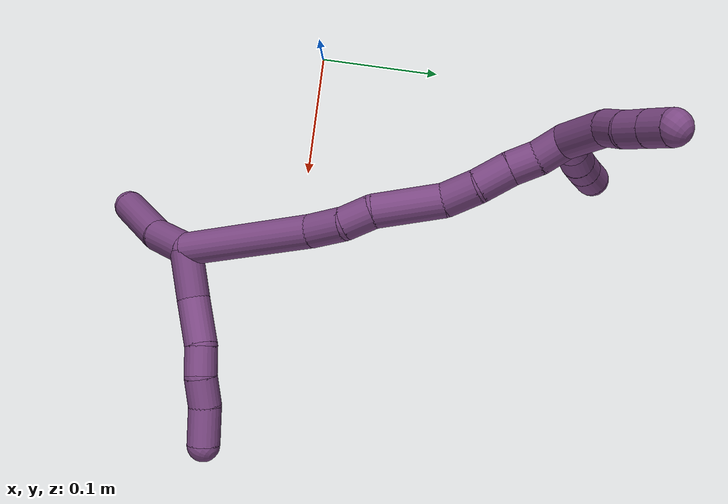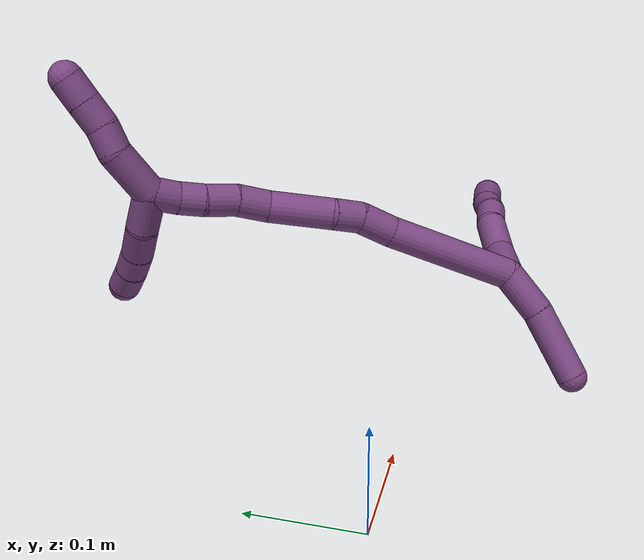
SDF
<sdf version="1.7">
 <world name="default">
  <model name="20">
   <static>0</static>
   <link name="20">
    <collision name="collision-cylinder-e_1_2_8">
     <pose>0.009938 -0.01018 0.012747 0.673901 0.547177 0.195982</pose>
     <geometry><cylinder><radius>0.0125</radius><length>0.038203</length></cylinder></geometry>
     <surface>
      <friction><ode><mu>1.16</mu><mu2>1.16</mu2><slip1>0</slip1><slip2>0</slip2></ode></friction>
      <contact><ode><kp>1e+06</kp><kd>1</kd><max_vel>0</max_vel><min_depth>0.001</min_depth></ode></contact>
     </surface>
    </collision>
    <visual name="visual-cylinder-e_1_2_8">
     <pose>0.009938 -0.01018 0.012747 0.673901 0.547177 0.195982</pose>
     <geometry><cylinder><radius>0.0125</radius><length>0.038203</length></cylinder></geometry>
     <material><ambient>0.478431 0.278431 0.509804 1</ambient></material>
    </visual>
    <collision name="collision-cylinder-e_2_8_9">
     <pose>0.024527 -0.03019 0.040575 0.577651 0.252818 0.075488</pose>
     <geometry><cylinder><radius>0.0125</radius><length>0.037188</length></cylinder></geometry>
     <surface>
      <friction><ode><mu>1.16</mu><mu2>1.16</mu2><slip1>0</slip1><slip2>0</slip2></ode></friction>
      <contact><ode><kp>1e+06</kp><kd>1</kd><max_vel>0</max_vel><min_depth>0.001</min_depth></ode></contact>
     </surface>
    </collision>
    <visual name="visual-cylinder-e_2_8_9">
     <pose>0.024527 -0.03019 0.040575 0.577651 0.252818 0.075488</pose>
     <geometry><cylinder><radius>0.0125</radius><length>0.037188</length></cylinder></geometry>
     <material><ambient>0.478431 0.278431 0.509804 1</ambient></material>
    </visual>
    <collision name="collision-cylinder-e_3_9_10">
     <pose>0.033685 -0.047511 0.062594 0.823672 0.41569 0.183722</pose>
     <geometry><cylinder><radius>0.0125</radius><length>0.02232</length></cylinder></geometry>
     <surface>
      <friction><ode><mu>1.16</mu><mu2>1.16</mu2><slip1>0</slip1><slip2>0</slip2></ode></friction>
      <contact><ode><kp>1e+06</kp><kd>1</kd><max_vel>0</max_vel><min_depth>0.001</min_depth></ode></contact>
     </surface>
    </collision>
    <visual name="visual-cylinder-e_3_9_10">
     <pose>0.033685 -0.047511 0.062594 0.823672 0.41569 0.183722</pose>
     <geometry><cylinder><radius>0.0125</radius><length>0.02232</length></cylinder></geometry>
     <material><ambient>0.478431 0.278431 0.509804 1</ambient></material>
    </visual>
    <collision name="collision-cylinder-e_4_10_11">
     <pose>0.045276 -0.060871 0.076223 0.720129 0.672249 0.261567</pose>
     <geometry><cylinder><radius>0.0125</radius><length>0.022754</length></cylinder></geometry>
     <surface>
      <friction><ode><mu>1.16</mu><mu2>1.16</mu2><slip1>0</slip1><slip2>0</slip2></ode></friction>
      <contact><ode><kp>1e+06</kp><kd>1</kd><max_vel>0</max_vel><min_depth>0.001</min_depth></ode></contact>
     </surface>
    </collision>
    <visual name="visual-cylinder-e_4_10_11">
     <pose>0.045276 -0.060871 0.076223 0.720129 0.672249 0.261567</pose>
     <geometry><cylinder><radius>0.0125</radius><length>0.022754</length></cylinder></geometry>
     <material><ambient>0.478431 0.278431 0.509804 1</ambient></material>
    </visual>
    <collision name="collision-cylinder-e_5_11_6">
     <pose>0.060207 -0.076599 0.090621 0.907284 0.560091 0.278628</pose>
     <geometry><cylinder><radius>0.0125</radius><length>0.029536</length></cylinder></geometry>
     <surface>
      <friction><ode><mu>1.16</mu><mu2>1.16</mu2><slip1>0</slip1><slip2>0</slip2></ode></friction>
      <contact><ode><kp>1e+06</kp><kd>1</kd><max_vel>0</max_vel><min_depth>0.001</min_depth></ode></contact>
     </surface>
    </collision>
    <visual name="visual-cylinder-e_5_11_6">
     <pose>0.060207 -0.076599 0.090621 0.907284 0.560091 0.278628</pose>
     <geometry><cylinder><radius>0.0125</radius><length>0.029536</length></cylinder></geometry>
     <material><ambient>0.478431 0.278431 0.509804 1</ambient></material>
    </visual>
    <collision name="collision-cylinder-e_1_2_12">
     <pose>0.006703 -0.002729 -0.018239 2.99306 0.348597 2.34203</pose>
     <geometry><cylinder><radius>0.0125</radius><length>0.039245</length></cylinder></geometry>
     <surface>
      <friction><ode><mu>1.16</mu><mu2>1.16</mu2><slip1>0</slip1><slip2>0</slip2></ode></friction>
      <contact><ode><kp>1e+06</kp><kd>1</kd><max_vel>0</max_vel><min_depth>0.001</min_depth></ode></contact>
     </surface>
    </collision>
    <visual name="visual-cylinder-e_1_2_12">
     <pose>0.006703 -0.002729 -0.018239 2.99306 0.348597 2.34203</pose>
     <geometry><cylinder><radius>0.0125</radius><length>0.039245</length></cylinder></geometry>
     <material><ambient>0.478431 0.278431 0.509804 1</ambient></material>
    </visual>
    <collision name="collision-cylinder-e_2_12_5">
     <pose>0.024315 -0.003536 -0.064764 -3.07373 0.36735 -2.78015</pose>
     <geometry><cylinder><radius>0.0125</radius><length>0.060755</length></cylinder></geometry>
     <surface>
      <friction><ode><mu>1.16</mu><mu2>1.16</mu2><slip1>0</slip1><slip2>0</slip2></ode></friction>
      <contact><ode><kp>1e+06</kp><kd>1</kd><max_vel>0</max_vel><min_depth>0.001</min_depth></ode></contact>
     </surface>
    </collision>
    <visual name="visual-cylinder-e_2_12_5">
     <pose>0.024315 -0.003536 -0.064764 -3.07373 0.36735 -2.78015</pose>
     <geometry><cylinder><radius>0.0125</radius><length>0.060755</length></cylinder></geometry>
     <material><ambient>0.478431 0.278431 0.509804 1</ambient></material>
    </visual>
    <collision name="collision-cylinder-e_1_2_13">
     <pose>-0.011377 0.034663 0.037596 -0.744839 -0.218921 0.085812</pose>
     <geometry><cylinder><radius>0.0125</radius><length>0.104775</length></cylinder></geometry>
     <surface>
      <friction><ode><mu>1.16</mu><mu2>1.16</mu2><slip1>0</slip1><slip2>0</slip2></ode></friction>
      <contact><ode><kp>1e+06</kp><kd>1</kd><max_vel>0</max_vel><min_depth>0.001</min_depth></ode></contact>
     </surface>
    </collision>
    <visual name="visual-cylinder-e_1_2_13">
     <pose>-0.011377 0.034663 0.037596 -0.744839 -0.218921 0.085812</pose>
     <geometry><cylinder><radius>0.0125</radius><length>0.104775</length></cylinder></geometry>
     <material><ambient>0.478431 0.278431 0.509804 1</ambient></material>
    </visual>
    <collision name="collision-cylinder-e_2_13_14">
     <pose>-0.027531 0.07827 0.084974 -0.740623 -0.345865 0.13542</pose>
     <geometry><cylinder><radius>0.0125</radius><length>0.028177</length></cylinder></geometry>
     <surface>
      <friction><ode><mu>1.16</mu><mu2>1.16</mu2><slip1>0</slip1><slip2>0</slip2></ode></friction>
      <contact><ode><kp>1e+06</kp><kd>1</kd><max_vel>0</max_vel><min_depth>0.001</min_depth></ode></contact>
     </surface>
    </collision>
    <visual name="visual-cylinder-e_2_13_14">
     <pose>-0.027531 0.07827 0.084974 -0.740623 -0.345865 0.13542</pose>
     <geometry><cylinder><radius>0.0125</radius><length>0.028177</length></cylinder></geometry>
     <material><ambient>0.478431 0.278431 0.509804 1</ambient></material>
    </visual>
    <collision name="collision-cylinder-e_3_14_15">
     <pose>-0.035136 0.096792 0.100474 -1.03265 -0.248384 0.141499</pose>
     <geometry><cylinder><radius>0.0125</radius><length>0.023017</length></cylinder></geometry>
     <surface>
      <friction><ode><mu>1.16</mu><mu2>1.16</mu2><slip1>0</slip1><slip2>0</slip2></ode></friction>
      <contact><ode><kp>1e+06</kp><kd>1</kd><max_vel>0</max_vel><min_depth>0.001</min_depth></ode></contact>
     </surface>
    </collision>
    <visual name="visual-cylinder-e_3_14_15">
     <pose>-0.035136 0.096792 0.100474 -1.03265 -0.248384 0.141499</pose>
     <geometry><cylinder><radius>0.0125</radius><length>0.023017</length></cylinder></geometry>
     <material><ambient>0.478431 0.278431 0.509804 1</ambient></material>
    </visual>
    <collision name="collision-cylinder-e_4_15_16">
     <pose>-0.038493 0.126114 0.122386 -0.883821 -0.020647 0.009769</pose>
     <geometry><cylinder><radius>0.0125</radius><length>0.051081</length></cylinder></geometry>
     <surface>
      <friction><ode><mu>1.16</mu><mu2>1.16</mu2><slip1>0</slip1><slip2>0</slip2></ode></friction>
      <contact><ode><kp>1e+06</kp><kd>1</kd><max_vel>0</max_vel><min_depth>0.001</min_depth></ode></contact>
     </surface>
    </collision>
    <visual name="visual-cylinder-e_4_15_16">
     <pose>-0.038493 0.126114 0.122386 -0.883821 -0.020647 0.009769</pose>
     <geometry><cylinder><radius>0.0125</radius><length>0.051081</length></cylinder></geometry>
     <material><ambient>0.478431 0.278431 0.509804 1</ambient></material>
    </visual>
    <collision name="collision-cylinder-e_5_16_17">
     <pose>-0.042904 0.15619 0.145325 -0.992522 -0.304951 0.166027</pose>
     <geometry><cylinder><radius>0.0125</radius><length>0.025875</length></cylinder></geometry>
     <surface>
      <friction><ode><mu>1.16</mu><mu2>1.16</mu2><slip1>0</slip1><slip2>0</slip2></ode></friction>
      <contact><ode><kp>1e+06</kp><kd>1</kd><max_vel>0</max_vel><min_depth>0.001</min_depth></ode></contact>
     </surface>
    </collision>
    <visual name="visual-cylinder-e_5_16_17">
     <pose>-0.042904 0.15619 0.145325 -0.992522 -0.304951 0.166027</pose>
     <geometry><cylinder><radius>0.0125</radius><length>0.025875</length></cylinder></geometry>
     <material><ambient>0.478431 0.278431 0.509804 1</ambient></material>
    </visual>
    <collision name="collision-cylinder-e_6_17_18">
     <pose>-0.049449 0.177898 0.156857 -1.17245 -0.212322 0.1413</pose>
     <geometry><cylinder><radius>0.0125</radius><length>0.025246</length></cylinder></geometry>
     <surface>
      <friction><ode><mu>1.16</mu><mu2>1.16</mu2><slip1>0</slip1><slip2>0</slip2></ode></friction>
      <contact><ode><kp>1e+06</kp><kd>1</kd><max_vel>0</max_vel><min_depth>0.001</min_depth></ode></contact>
     </surface>
    </collision>
    <visual name="visual-cylinder-e_6_17_18">
     <pose>-0.049449 0.177898 0.156857 -1.17245 -0.212322 0.1413</pose>
     <geometry><cylinder><radius>0.0125</radius><length>0.025246</length></cylinder></geometry>
     <material><ambient>0.478431 0.278431 0.509804 1</ambient></material>
    </visual>
    <collision name="collision-cylinder-e_7_18_19">
     <pose>-0.053965 0.197922 0.166746 -1.03789 -0.182745 0.104573</pose>
     <geometry><cylinder><radius>0.0125</radius><length>0.020428</length></cylinder></geometry>
     <surface>
      <friction><ode><mu>1.16</mu><mu2>1.16</mu2><slip1>0</slip1><slip2>0</slip2></ode></friction>
      <contact><ode><kp>1e+06</kp><kd>1</kd><max_vel>0</max_vel><min_depth>0.001</min_depth></ode></contact>
     </surface>
    </collision>
    <visual name="visual-cylinder-e_7_18_19">
     <pose>-0.053965 0.197922 0.166746 -1.03789 -0.182745 0.104573</pose>
     <geometry><cylinder><radius>0.0125</radius><length>0.020428</length></cylinder></geometry>
     <material><ambient>0.478431 0.278431 0.509804 1</ambient></material>
    </visual>
    <collision name="collision-cylinder-e_8_19_1">
     <pose>-0.060204 0.21526 0.176303 -1.09691 -0.422011 0.260258</pose>
     <geometry><cylinder><radius>0.0125</radius><length>0.021401</length></cylinder></geometry>
     <surface>
      <friction><ode><mu>1.16</mu><mu2>1.16</mu2><slip1>0</slip1><slip2>0</slip2></ode></friction>
      <contact><ode><kp>1e+06</kp><kd>1</kd><max_vel>0</max_vel><min_depth>0.001</min_depth></ode></contact>
     </surface>
    </collision>
    <visual name="visual-cylinder-e_8_19_1">
     <pose>-0.060204 0.21526 0.176303 -1.09691 -0.422011 0.260258</pose>
     <geometry><cylinder><radius>0.0125</radius><length>0.021401</length></cylinder></geometry>
     <material><ambient>0.478431 0.278431 0.509804 1</ambient></material>
    </visual>
    <collision name="collision-cylinder-e_1_1_20">
     <pose>-0.050501 0.230121 0.177404 -2.06841 1.10802 -1.61007</pose>
     <geometry><cylinder><radius>0.0125</radius><length>0.031484</length></cylinder></geometry>
     <surface>
      <friction><ode><mu>1.16</mu><mu2>1.16</mu2><slip1>0</slip1><slip2>0</slip2></ode></friction>
      <contact><ode><kp>1e+06</kp><kd>1</kd><max_vel>0</max_vel><min_depth>0.001</min_depth></ode></contact>
     </surface>
    </collision>
    <visual name="visual-cylinder-e_1_1_20">
     <pose>-0.050501 0.230121 0.177404 -2.06841 1.10802 -1.61007</pose>
     <geometry><cylinder><radius>0.0125</radius><length>0.031484</length></cylinder></geometry>
     <material><ambient>0.478431 0.278431 0.509804 1</ambient></material>
    </visual>
    <collision name="collision-cylinder-e_2_20_21">
     <pose>-0.023011 0.239848 0.173048 -1.84556 1.30218 -1.57718</pose>
     <geometry><cylinder><radius>0.0125</radius><length>0.027805</length></cylinder></geometry>
     <surface>
      <friction><ode><mu>1.16</mu><mu2>1.16</mu2><slip1>0</slip1><slip2>0</slip2></ode></friction>
      <contact><ode><kp>1e+06</kp><kd>1</kd><max_vel>0</max_vel><min_depth>0.001</min_depth></ode></contact>
     </surface>
    </collision>
    <visual name="visual-cylinder-e_2_20_21">
     <pose>-0.023011 0.239848 0.173048 -1.84556 1.30218 -1.57718</pose>
     <geometry><cylinder><radius>0.0125</radius><length>0.027805</length></cylinder></geometry>
     <material><ambient>0.478431 0.278431 0.509804 1</ambient></material>
    </visual>
    <collision name="collision-cylinder-e_3_21_22">
     <pose>-0.000112 0.246766 0.171828 -1.63563 1.22937 -1.29113</pose>
     <geometry><cylinder><radius>0.0125</radius><length>0.020152</length></cylinder></geometry>
     <surface>
      <friction><ode><mu>1.16</mu><mu2>1.16</mu2><slip1>0</slip1><slip2>0</slip2></ode></friction>
      <contact><ode><kp>1e+06</kp><kd>1</kd><max_vel>0</max_vel><min_depth>0.001</min_depth></ode></contact>
     </surface>
    </collision>
    <visual name="visual-cylinder-e_3_21_22">
     <pose>-0.000112 0.246766 0.171828 -1.63563 1.22937 -1.29113</pose>
     <geometry><cylinder><radius>0.0125</radius><length>0.020152</length></cylinder></geometry>
     <material><ambient>0.478431 0.278431 0.509804 1</ambient></material>
    </visual>
    <collision name="collision-cylinder-e_4_22_4">
     <pose>0.019017 0.253654 0.172273 -1.38475 1.21471 -1.04574</pose>
     <geometry><cylinder><radius>0.0125</radius><length>0.020559</length></cylinder></geometry>
     <surface>
      <friction><ode><mu>1.16</mu><mu2>1.16</mu2><slip1>0</slip1><slip2>0</slip2></ode></friction>
      <contact><ode><kp>1e+06</kp><kd>1</kd><max_vel>0</max_vel><min_depth>0.001</min_depth></ode></contact>
     </surface>
    </collision>
    <visual name="visual-cylinder-e_4_22_4">
     <pose>0.019017 0.253654 0.172273 -1.38475 1.21471 -1.04574</pose>
     <geometry><cylinder><radius>0.0125</radius><length>0.020559</length></cylinder></geometry>
     <material><ambient>0.478431 0.278431 0.509804 1</ambient></material>
    </visual>
    <collision name="collision-cylinder-e_1_1_23">
     <pose>-0.078091 0.229806 0.193971 -0.417428 -0.751425 0.1667</pose>
     <geometry><cylinder><radius>0.0125</radius><length>0.039561</length></cylinder></geometry>
     <surface>
      <friction><ode><mu>1.16</mu><mu2>1.16</mu2><slip1>0</slip1><slip2>0</slip2></ode></friction>
      <contact><ode><kp>1e+06</kp><kd>1</kd><max_vel>0</max_vel><min_depth>0.001</min_depth></ode></contact>
     </surface>
    </collision>
    <visual name="visual-cylinder-e_1_1_23">
     <pose>-0.078091 0.229806 0.193971 -0.417428 -0.751425 0.1667</pose>
     <geometry><cylinder><radius>0.0125</radius><length>0.039561</length></cylinder></geometry>
     <material><ambient>0.478431 0.278431 0.509804 1</ambient></material>
    </visual>
    <collision name="collision-cylinder-e_2_23_24">
     <pose>-0.097825 0.235547 0.215052 0.015 -0.669727 -0.00522</pose>
     <geometry><cylinder><radius>0.0125</radius><length>0.020073</length></cylinder></geometry>
     <surface>
      <friction><ode><mu>1.16</mu><mu2>1.16</mu2><slip1>0</slip1><slip2>0</slip2></ode></friction>
      <contact><ode><kp>1e+06</kp><kd>1</kd><max_vel>0</max_vel><min_depth>0.001</min_depth></ode></contact>
     </surface>
    </collision>
    <visual name="visual-cylinder-e_2_23_24">
     <pose>-0.097825 0.235547 0.215052 0.015 -0.669727 -0.00522</pose>
     <geometry><cylinder><radius>0.0125</radius><length>0.020073</length></cylinder></geometry>
     <material><ambient>0.478431 0.278431 0.509804 1</ambient></material>
    </visual>
    <collision name="collision-cylinder-e_3_24_25">
     <pose>-0.109946 0.237343 0.230982 -0.232998 -0.617954 0.074676</pose>
     <geometry><cylinder><radius>0.0125</radius><length>0.020332</length></cylinder></geometry>
     <surface>
      <friction><ode><mu>1.16</mu><mu2>1.16</mu2><slip1>0</slip1><slip2>0</slip2></ode></friction>
      <contact><ode><kp>1e+06</kp><kd>1</kd><max_vel>0</max_vel><min_depth>0.001</min_depth></ode></contact>
     </surface>
    </collision>
    <visual name="visual-cylinder-e_3_24_25">
     <pose>-0.109946 0.237343 0.230982 -0.232998 -0.617954 0.074676</pose>
     <geometry><cylinder><radius>0.0125</radius><length>0.020332</length></cylinder></geometry>
     <material><ambient>0.478431 0.278431 0.509804 1</ambient></material>
    </visual>
    <collision name="collision-cylinder-e_4_25_3">
     <pose>-0.12162 0.241012 0.247031 -0.21642 -0.615631 0.069047</pose>
     <geometry><cylinder><radius>0.0125</radius><length>0.020033</length></cylinder></geometry>
     <surface>
      <friction><ode><mu>1.16</mu><mu2>1.16</mu2><slip1>0</slip1><slip2>0</slip2></ode></friction>
      <contact><ode><kp>1e+06</kp><kd>1</kd><max_vel>0</max_vel><min_depth>0.001</min_depth></ode></contact>
     </surface>
    </collision>
    <visual name="visual-cylinder-e_4_25_3">
     <pose>-0.12162 0.241012 0.247031 -0.21642 -0.615631 0.069047</pose>
     <geometry><cylinder><radius>0.0125</radius><length>0.020033</length></cylinder></geometry>
     <material><ambient>0.478431 0.278431 0.509804 1</ambient></material>
    </visual>
    <collision name="collision-sphere-3">
     <pose>-0.127404 0.242768 0.255018 0 -0 0</pose>
     <geometry><sphere><radius>0.0125</radius></sphere></geometry>
     <surface>
      <friction><ode><mu>1.16</mu><mu2>1.16</mu2><slip1>0</slip1><slip2>0</slip2></ode></friction>
      <contact><ode><kp>1e+06</kp><kd>1</kd><max_vel>0</max_vel><min_depth>0.001</min_depth></ode></contact>
     </surface>
    </collision>
    <visual name="visual-sphere-3">
     <pose>-0.127404 0.242768 0.255018 0 -0 0</pose>
     <geometry><sphere><radius>0.0125</radius></sphere></geometry>
     <material><ambient>0.478431 0.278431 0.509804 1</ambient></material>
    </visual>
    <collision name="collision-sphere-25">
     <pose>-0.115836 0.239256 0.239044 0 -0 0</pose>
     <geometry><sphere><radius>0.0125</radius></sphere></geometry>
     <surface>
      <friction><ode><mu>1.16</mu><mu2>1.16</mu2><slip1>0</slip1><slip2>0</slip2></ode></friction>
      <contact><ode><kp>1e+06</kp><kd>1</kd><max_vel>0</max_vel><min_depth>0.001</min_depth></ode></contact>
     </surface>
    </collision>
    <visual name="visual-sphere-25">
     <pose>-0.115836 0.239256 0.239044 0 -0 0</pose>
     <geometry><sphere><radius>0.0125</radius></sphere></geometry>
     <material><ambient>0.478431 0.278431 0.509804 1</ambient></material>
    </visual>
    <collision name="collision-sphere-24">
     <pose>-0.104056 0.235429 0.222919 0 -0 0</pose>
     <geometry><sphere><radius>0.0125</radius></sphere></geometry>
     <surface>
      <friction><ode><mu>1.16</mu><mu2>1.16</mu2><slip1>0</slip1><slip2>0</slip2></ode></friction>
      <contact><ode><kp>1e+06</kp><kd>1</kd><max_vel>0</max_vel><min_depth>0.001</min_depth></ode></contact>
     </surface>
    </collision>
    <visual name="visual-sphere-24">
     <pose>-0.104056 0.235429 0.222919 0 -0 0</pose>
     <geometry><sphere><radius>0.0125</radius></sphere></geometry>
     <material><ambient>0.478431 0.278431 0.509804 1</ambient></material>
    </visual>
    <collision name="collision-sphere-23">
     <pose>-0.091595 0.235666 0.207184 0 -0 0</pose>
     <geometry><sphere><radius>0.0125</radius></sphere></geometry>
     <surface>
      <friction><ode><mu>1.16</mu><mu2>1.16</mu2><slip1>0</slip1><slip2>0</slip2></ode></friction>
      <contact><ode><kp>1e+06</kp><kd>1</kd><max_vel>0</max_vel><min_depth>0.001</min_depth></ode></contact>
     </surface>
    </collision>
    <visual name="visual-sphere-23">
     <pose>-0.091595 0.235666 0.207184 0 -0 0</pose>
     <geometry><sphere><radius>0.0125</radius></sphere></geometry>
     <material><ambient>0.478431 0.278431 0.509804 1</ambient></material>
    </visual>
    <collision name="collision-sphere-4">
     <pose>0.028651 0.257176 0.172935 0 -0 0</pose>
     <geometry><sphere><radius>0.0125</radius></sphere></geometry>
     <surface>
      <friction><ode><mu>1.16</mu><mu2>1.16</mu2><slip1>0</slip1><slip2>0</slip2></ode></friction>
      <contact><ode><kp>1e+06</kp><kd>1</kd><max_vel>0</max_vel><min_depth>0.001</min_depth></ode></contact>
     </surface>
    </collision>
    <visual name="visual-sphere-4">
     <pose>0.028651 0.257176 0.172935 0 -0 0</pose>
     <geometry><sphere><radius>0.0125</radius></sphere></geometry>
     <material><ambient>0.478431 0.278431 0.509804 1</ambient></material>
    </visual>
    <collision name="collision-sphere-22">
     <pose>0.009382 0.250133 0.17161 0 -0 0</pose>
     <geometry><sphere><radius>0.0125</radius></sphere></geometry>
     <surface>
      <friction><ode><mu>1.16</mu><mu2>1.16</mu2><slip1>0</slip1><slip2>0</slip2></ode></friction>
      <contact><ode><kp>1e+06</kp><kd>1</kd><max_vel>0</max_vel><min_depth>0.001</min_depth></ode></contact>
     </surface>
    </collision>
    <visual name="visual-sphere-22">
     <pose>0.009382 0.250133 0.17161 0 -0 0</pose>
     <geometry><sphere><radius>0.0125</radius></sphere></geometry>
     <material><ambient>0.478431 0.278431 0.509804 1</ambient></material>
    </visual>
    <collision name="collision-sphere-21">
     <pose>-0.009607 0.243399 0.172047 0 -0 0</pose>
     <geometry><sphere><radius>0.0125</radius></sphere></geometry>
     <surface>
      <friction><ode><mu>1.16</mu><mu2>1.16</mu2><slip1>0</slip1><slip2>0</slip2></ode></friction>
      <contact><ode><kp>1e+06</kp><kd>1</kd><max_vel>0</max_vel><min_depth>0.001</min_depth></ode></contact>
     </surface>
    </collision>
    <visual name="visual-sphere-21">
     <pose>-0.009607 0.243399 0.172047 0 -0 0</pose>
     <geometry><sphere><radius>0.0125</radius></sphere></geometry>
     <material><ambient>0.478431 0.278431 0.509804 1</ambient></material>
    </visual>
    <collision name="collision-sphere-20">
     <pose>-0.036415 0.236297 0.174049 0 -0 0</pose>
     <geometry><sphere><radius>0.0125</radius></sphere></geometry>
     <surface>
      <friction><ode><mu>1.16</mu><mu2>1.16</mu2><slip1>0</slip1><slip2>0</slip2></ode></friction>
      <contact><ode><kp>1e+06</kp><kd>1</kd><max_vel>0</max_vel><min_depth>0.001</min_depth></ode></contact>
     </surface>
    </collision>
    <visual name="visual-sphere-20">
     <pose>-0.036415 0.236297 0.174049 0 -0 0</pose>
     <geometry><sphere><radius>0.0125</radius></sphere></geometry>
     <material><ambient>0.478431 0.278431 0.509804 1</ambient></material>
    </visual>
    <collision name="collision-sphere-6">
     <pose>0.068052 -0.086455 0.098326 0 -0 0</pose>
     <geometry><sphere><radius>0.0125</radius></sphere></geometry>
     <surface>
      <friction><ode><mu>1.16</mu><mu2>1.16</mu2><slip1>0</slip1><slip2>0</slip2></ode></friction>
      <contact><ode><kp>1e+06</kp><kd>1</kd><max_vel>0</max_vel><min_depth>0.001</min_depth></ode></contact>
     </surface>
    </collision>
    <visual name="visual-sphere-6">
     <pose>0.068052 -0.086455 0.098326 0 -0 0</pose>
     <geometry><sphere><radius>0.0125</radius></sphere></geometry>
     <material><ambient>0.478431 0.278431 0.509804 1</ambient></material>
    </visual>
    <collision name="collision-sphere-11">
     <pose>0.052361 -0.066742 0.082915 0 -0 0</pose>
     <geometry><sphere><radius>0.0125</radius></sphere></geometry>
     <surface>
      <friction><ode><mu>1.16</mu><mu2>1.16</mu2><slip1>0</slip1><slip2>0</slip2></ode></friction>
      <contact><ode><kp>1e+06</kp><kd>1</kd><max_vel>0</max_vel><min_depth>0.001</min_depth></ode></contact>
     </surface>
    </collision>
    <visual name="visual-sphere-11">
     <pose>0.052361 -0.066742 0.082915 0 -0 0</pose>
     <geometry><sphere><radius>0.0125</radius></sphere></geometry>
     <material><ambient>0.478431 0.278431 0.509804 1</ambient></material>
    </visual>
    <collision name="collision-sphere-10">
     <pose>0.038191 -0.055001 0.069532 0 -0 0</pose>
     <geometry><sphere><radius>0.0125</radius></sphere></geometry>
     <surface>
      <friction><ode><mu>1.16</mu><mu2>1.16</mu2><slip1>0</slip1><slip2>0</slip2></ode></friction>
      <contact><ode><kp>1e+06</kp><kd>1</kd><max_vel>0</max_vel><min_depth>0.001</min_depth></ode></contact>
     </surface>
    </collision>
    <visual name="visual-sphere-10">
     <pose>0.038191 -0.055001 0.069532 0 -0 0</pose>
     <geometry><sphere><radius>0.0125</radius></sphere></geometry>
     <material><ambient>0.478431 0.278431 0.509804 1</ambient></material>
    </visual>
    <collision name="collision-sphere-9">
     <pose>0.029178 -0.04002 0.055657 0 -0 0</pose>
     <geometry><sphere><radius>0.0125</radius></sphere></geometry>
     <surface>
      <friction><ode><mu>1.16</mu><mu2>1.16</mu2><slip1>0</slip1><slip2>0</slip2></ode></friction>
      <contact><ode><kp>1e+06</kp><kd>1</kd><max_vel>0</max_vel><min_depth>0.001</min_depth></ode></contact>
     </surface>
    </collision>
    <visual name="visual-sphere-9">
     <pose>0.029178 -0.04002 0.055657 0 -0 0</pose>
     <geometry><sphere><radius>0.0125</radius></sphere></geometry>
     <material><ambient>0.478431 0.278431 0.509804 1</ambient></material>
    </visual>
    <collision name="collision-sphere-2">
     <geometry><sphere><radius>0.0125</radius></sphere></geometry>
     <surface>
      <friction><ode><mu>1.16</mu><mu2>1.16</mu2><slip1>0</slip1><slip2>0</slip2></ode></friction>
      <contact><ode><kp>1e+06</kp><kd>1</kd><max_vel>0</max_vel><min_depth>0.001</min_depth></ode></contact>
     </surface>
    </collision>
    <visual name="visual-sphere-2">
     <geometry><sphere><radius>0.0125</radius></sphere></geometry>
     <material><ambient>0.478431 0.278431 0.509804 1</ambient></material>
    </visual>
    <collision name="collision-sphere-19">
     <pose>-0.055821 0.206574 0.171848 0 -0 0</pose>
     <geometry><sphere><radius>0.0125</radius></sphere></geometry>
     <surface>
      <friction><ode><mu>1.16</mu><mu2>1.16</mu2><slip1>0</slip1><slip2>0</slip2></ode></friction>
      <contact><ode><kp>1e+06</kp><kd>1</kd><max_vel>0</max_vel><min_depth>0.001</min_depth></ode></contact>
     </surface>
    </collision>
    <visual name="visual-sphere-19">
     <pose>-0.055821 0.206574 0.171848 0 -0 0</pose>
     <geometry><sphere><radius>0.0125</radius></sphere></geometry>
     <material><ambient>0.478431 0.278431 0.509804 1</ambient></material>
    </visual>
    <collision name="collision-sphere-8">
     <pose>0.019876 -0.020359 0.025493 0 -0 0</pose>
     <geometry><sphere><radius>0.0125</radius></sphere></geometry>
     <surface>
      <friction><ode><mu>1.16</mu><mu2>1.16</mu2><slip1>0</slip1><slip2>0</slip2></ode></friction>
      <contact><ode><kp>1e+06</kp><kd>1</kd><max_vel>0</max_vel><min_depth>0.001</min_depth></ode></contact>
     </surface>
    </collision>
    <visual name="visual-sphere-8">
     <pose>0.019876 -0.020359 0.025493 0 -0 0</pose>
     <geometry><sphere><radius>0.0125</radius></sphere></geometry>
     <material><ambient>0.478431 0.278431 0.509804 1</ambient></material>
    </visual>
    <collision name="collision-sphere-12">
     <pose>0.013405 -0.005458 -0.036478 0 -0 0</pose>
     <geometry><sphere><radius>0.0125</radius></sphere></geometry>
     <surface>
      <friction><ode><mu>1.16</mu><mu2>1.16</mu2><slip1>0</slip1><slip2>0</slip2></ode></friction>
      <contact><ode><kp>1e+06</kp><kd>1</kd><max_vel>0</max_vel><min_depth>0.001</min_depth></ode></contact>
     </surface>
    </collision>
    <visual name="visual-sphere-12">
     <pose>0.013405 -0.005458 -0.036478 0 -0 0</pose>
     <geometry><sphere><radius>0.0125</radius></sphere></geometry>
     <material><ambient>0.478431 0.278431 0.509804 1</ambient></material>
    </visual>
    <collision name="collision-sphere-5">
     <pose>0.035225 -0.001614 -0.093049 0 -0 0</pose>
     <geometry><sphere><radius>0.0125</radius></sphere></geometry>
     <surface>
      <friction><ode><mu>1.16</mu><mu2>1.16</mu2><slip1>0</slip1><slip2>0</slip2></ode></friction>
      <contact><ode><kp>1e+06</kp><kd>1</kd><max_vel>0</max_vel><min_depth>0.001</min_depth></ode></contact>
     </surface>
    </collision>
    <visual name="visual-sphere-5">
     <pose>0.035225 -0.001614 -0.093049 0 -0 0</pose>
     <geometry><sphere><radius>0.0125</radius></sphere></geometry>
     <material><ambient>0.478431 0.278431 0.509804 1</ambient></material>
    </visual>
    <collision name="collision-sphere-13">
     <pose>-0.022755 0.069327 0.075192 0 -0 0</pose>
     <geometry><sphere><radius>0.0125</radius></sphere></geometry>
     <surface>
      <friction><ode><mu>1.16</mu><mu2>1.16</mu2><slip1>0</slip1><slip2>0</slip2></ode></friction>
      <contact><ode><kp>1e+06</kp><kd>1</kd><max_vel>0</max_vel><min_depth>0.001</min_depth></ode></contact>
     </surface>
    </collision>
    <visual name="visual-sphere-13">
     <pose>-0.022755 0.069327 0.075192 0 -0 0</pose>
     <geometry><sphere><radius>0.0125</radius></sphere></geometry>
     <material><ambient>0.478431 0.278431 0.509804 1</ambient></material>
    </visual>
    <collision name="collision-sphere-14">
     <pose>-0.032307 0.087213 0.094756 0 -0 0</pose>
     <geometry><sphere><radius>0.0125</radius></sphere></geometry>
     <surface>
      <friction><ode><mu>1.16</mu><mu2>1.16</mu2><slip1>0</slip1><slip2>0</slip2></ode></friction>
      <contact><ode><kp>1e+06</kp><kd>1</kd><max_vel>0</max_vel><min_depth>0.001</min_depth></ode></contact>
     </surface>
    </collision>
    <visual name="visual-sphere-14">
     <pose>-0.032307 0.087213 0.094756 0 -0 0</pose>
     <geometry><sphere><radius>0.0125</radius></sphere></geometry>
     <material><ambient>0.478431 0.278431 0.509804 1</ambient></material>
    </visual>
    <collision name="collision-sphere-15">
     <pose>-0.037965 0.106371 0.106191 0 -0 0</pose>
     <geometry><sphere><radius>0.0125</radius></sphere></geometry>
     <surface>
      <friction><ode><mu>1.16</mu><mu2>1.16</mu2><slip1>0</slip1><slip2>0</slip2></ode></friction>
      <contact><ode><kp>1e+06</kp><kd>1</kd><max_vel>0</max_vel><min_depth>0.001</min_depth></ode></contact>
     </surface>
    </collision>
    <visual name="visual-sphere-15">
     <pose>-0.037965 0.106371 0.106191 0 -0 0</pose>
     <geometry><sphere><radius>0.0125</radius></sphere></geometry>
     <material><ambient>0.478431 0.278431 0.509804 1</ambient></material>
    </visual>
    <collision name="collision-sphere-16">
     <pose>-0.03902 0.145856 0.13858 0 -0 0</pose>
     <geometry><sphere><radius>0.0125</radius></sphere></geometry>
     <surface>
      <friction><ode><mu>1.16</mu><mu2>1.16</mu2><slip1>0</slip1><slip2>0</slip2></ode></friction>
      <contact><ode><kp>1e+06</kp><kd>1</kd><max_vel>0</max_vel><min_depth>0.001</min_depth></ode></contact>
     </surface>
    </collision>
    <visual name="visual-sphere-16">
     <pose>-0.03902 0.145856 0.13858 0 -0 0</pose>
     <geometry><sphere><radius>0.0125</radius></sphere></geometry>
     <material><ambient>0.478431 0.278431 0.509804 1</ambient></material>
    </visual>
    <collision name="collision-sphere-17">
     <pose>-0.046789 0.166525 0.15207 0 -0 0</pose>
     <geometry><sphere><radius>0.0125</radius></sphere></geometry>
     <surface>
      <friction><ode><mu>1.16</mu><mu2>1.16</mu2><slip1>0</slip1><slip2>0</slip2></ode></friction>
      <contact><ode><kp>1e+06</kp><kd>1</kd><max_vel>0</max_vel><min_depth>0.001</min_depth></ode></contact>
     </surface>
    </collision>
    <visual name="visual-sphere-17">
     <pose>-0.046789 0.166525 0.15207 0 -0 0</pose>
     <geometry><sphere><radius>0.0125</radius></sphere></geometry>
     <material><ambient>0.478431 0.278431 0.509804 1</ambient></material>
    </visual>
    <collision name="collision-sphere-18">
     <pose>-0.052109 0.189271 0.161643 0 -0 0</pose>
     <geometry><sphere><radius>0.0125</radius></sphere></geometry>
     <surface>
      <friction><ode><mu>1.16</mu><mu2>1.16</mu2><slip1>0</slip1><slip2>0</slip2></ode></friction>
      <contact><ode><kp>1e+06</kp><kd>1</kd><max_vel>0</max_vel><min_depth>0.001</min_depth></ode></contact>
     </surface>
    </collision>
    <visual name="visual-sphere-18">
     <pose>-0.052109 0.189271 0.161643 0 -0 0</pose>
     <geometry><sphere><radius>0.0125</radius></sphere></geometry>
     <material><ambient>0.478431 0.278431 0.509804 1</ambient></material>
    </visual>
    <collision name="collision-sphere-1">
     <pose>-0.064587 0.223946 0.180758 0 -0 0</pose>
     <geometry><sphere><radius>0.0125</radius></sphere></geometry>
     <surface>
      <friction><ode><mu>1.16</mu><mu2>1.16</mu2><slip1>0</slip1><slip2>0</slip2></ode></friction>
      <contact><ode><kp>1e+06</kp><kd>1</kd><max_vel>0</max_vel><min_depth>0.001</min_depth></ode></contact>
     </surface>
    </collision>
    <visual name="visual-sphere-1">
     <pose>-0.064587 0.223946 0.180758 0 -0 0</pose>
     <geometry><sphere><radius>0.0125</radius></sphere></geometry>
     <material><ambient>0.478431 0.278431 0.509804 1</ambient></material>
    </visual>
    <inertial>
     <pose>-0.019288 0.096965 0.095984 0 -0 0</pose>
     <mass>0.75</mass>
     <inertia>
      <ixx>0.000139</ixx>
      <ixy>0</ixy>
      <ixz>0</ixz>
      <iyy>0.000172</iyy>
      <iyz>0</iyz>
      <izz>-5.6e-05</izz>
     </inertia>
    </inertial>
   </link>
   <pose>0.177059 -0.076434 0.141727 -0.447705 1.00808 0.473642</pose>
  </model>
 </world>
</sdf>
